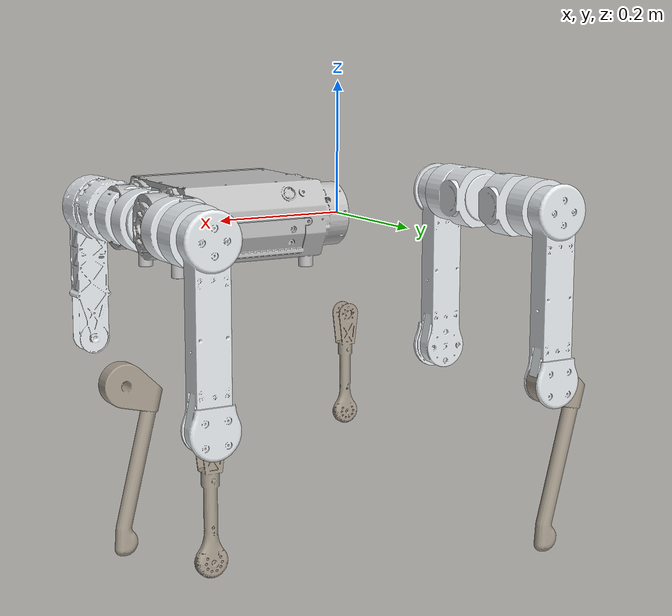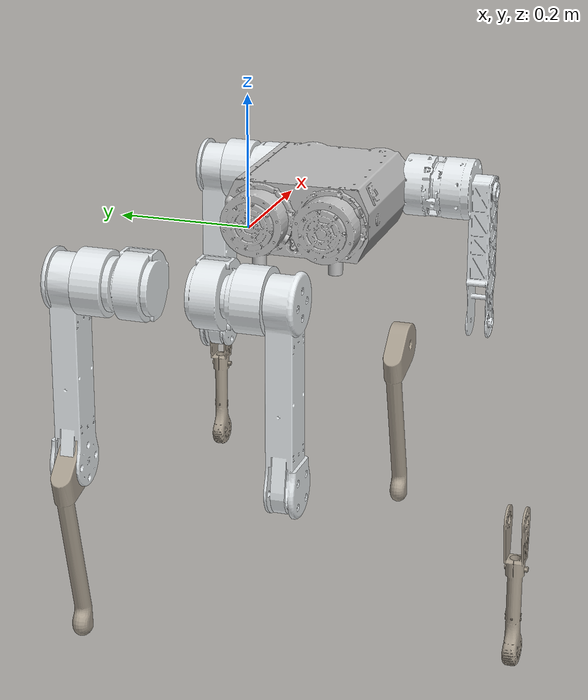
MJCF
<mujoco model="belt_urdf_aligned_axis_ok">
  <compiler angle="radian" meshdir="assets"/>
  <asset>
    <mesh name="base_link" file="base_link.STL"/>
    <mesh name="fr_abad_link" file="fr_abad_link.STL"/>
    <mesh name="fr_hip_link" file="fr_hip_link.STL"/>
    <mesh name="fr_knee_link" file="fr_knee_link.STL"/>
    <mesh name="fl_abad_link" file="fl_abad_link.STL"/>
    <mesh name="fl_hip_link" file="fl_hip_link.STL"/>
    <mesh name="fl_knee_link" file="fl_knee_link.STL"/>
    <mesh name="rr_abad_link" file="rr_abad_link.STL"/>
    <mesh name="rr_hip_link" file="rr_hip_link.STL"/>
    <mesh name="rr_knee_link" file="rr_knee_link.STL"/>
    <mesh name="rl_abad_link" file="rl_abad_link.STL"/>
    <mesh name="rl_hip_link" file="rl_hip_link.STL"/>
    <mesh name="rl_knee_link" file="rl_knee_link.STL"/>
  </asset>
  <worldbody>
    <geom type="mesh" rgba="0.752941 0.752941 0.752941 1" mesh="base_link"/>
    <body name="fr_abad_link" pos="0.241 -0.055 0">
      <inertial pos="0.052428 -0.025819 7.2618e-08" quat="0.453148 0.54283 -0.453135 0.542827" mass="1.9747" diaginertia="0.0032013 0.00310579 0.00221631"/>
      <joint name="fr_abad_joint" pos="0 0 0" axis="-1 0 0" limited="false"/>
      <geom type="mesh" rgba="0.89804 0.91765 0.92941 1" mesh="fr_abad_link"/>
      <body name="fr_hip_link" pos="0.0554994 -0.10045 0">
        <inertial pos="-4.7268e-06 -0.0035029 -0.11665" quat="0.707131 0.00128766 -0.0013139 0.70708" mass="1.0489" diaginertia="0.0125462 0.012351 0.000606138"/>
        <joint name="fr_hip_joint" pos="0 0 0" axis="0 1 0" limited="false"/>
        <geom type="mesh" rgba="0.89804 0.91765 0.92941 1" mesh="fr_hip_link"/>
        <body name="fr_knee_link" pos="0 0 -0.2695">
          <inertial pos="-0.0112576 -3.13499e-08 -0.0631957" quat="0.70698 -0.0132108 -0.0132119 0.706987" mass="0.391062" diaginertia="0.00383396 0.00366268 0.000225956"/>
          <joint name="fr_knee_joint" pos="0 0 0" axis="0 1 0" limited="false"/>
          <geom type="mesh" rgba="0.658824 0.619608 0.560784 1" mesh="fr_knee_link"/>
        </body>
      </body>
    </body>
    <body name="fl_abad_link" pos="0.241 0.055 0">
      <inertial pos="0.052428 0.025819 -7.2618e-08" quat="0.542827 0.453135 -0.54283 0.453148" mass="1.9747" diaginertia="0.0032013 0.00310579 0.00221631"/>
      <joint name="fl_abad_joint" pos="0 0 0" axis="-1 0 0" limited="false"/>
      <geom type="mesh" rgba="0.89804 0.91765 0.92941 1" mesh="fl_abad_link"/>
      <body name="fl_hip_link" pos="0.055499 0.10045 0">
        <inertial pos="4.7257e-06 0.0035029 -0.11665" quat="0.707131 -0.00128767 0.0013139 0.70708" mass="1.0489" diaginertia="0.0125462 0.012351 0.000606138"/>
        <joint name="fl_hip_joint" pos="0 0 0" axis="0 -1 0" limited="false"/>
        <geom type="mesh" rgba="0.89804 0.91765 0.92941 1" mesh="fl_hip_link"/>
        <body name="fl_knee_link" pos="0 0 -0.2695">
          <inertial pos="-0.011258 -3.135e-08 -0.063196" quat="0.70698 -0.0132108 -0.0132119 0.706987" mass="0.39106" diaginertia="0.003834 0.0036627 0.000225953"/>
          <joint name="fl_knee_joint" pos="0 0 0" axis="0 -1 0" limited="false"/>
          <geom type="mesh" rgba="0.65882 0.61961 0.56078 1" mesh="fl_knee_link"/>
        </body>
      </body>
    </body>
    <body name="rr_abad_link" pos="-0.241 -0.055 0">
      <inertial pos="-0.052428 -0.025819 -7.2618e-08" quat="0.54283 0.453148 -0.542827 0.453135" mass="1.9747" diaginertia="0.0032013 0.00310579 0.00221631"/>
      <joint name="rr_abad_joint" pos="0 0 0" axis="1 0 0" limited="false"/>
      <geom type="mesh" rgba="0.89804 0.91765 0.92941 1" mesh="rr_abad_link"/>
      <body name="rr_hip_link" pos="-0.055499 -0.10045 0">
        <inertial pos="-4.72682e-06 -0.0035029 -0.116651" quat="0.707131 0.00128766 -0.0013139 0.70708" mass="1.04889" diaginertia="0.0125463 0.0123505 0.000606143"/>
        <joint name="rr_hip_joint" pos="0 0 0" axis="0 1 0" limited="false"/>
        <geom type="mesh" rgba="0.898039 0.917647 0.929412 1" mesh="rr_hip_link"/>
        <body name="rr_knee_link" pos="0 0 -0.2695">
          <inertial pos="-0.011258 -3.135e-08 -0.063196" quat="0.70698 -0.0132108 -0.0132119 0.706987" mass="0.39106" diaginertia="0.003834 0.0036627 0.000225953"/>
          <joint name="rr_knee_joint" pos="0 0 0" axis="0 1 0" limited="false"/>
          <geom type="mesh" rgba="0.65882 0.61961 0.56078 1" mesh="rr_knee_link"/>
        </body>
      </body>
    </body>
    <body name="rl_abad_link" pos="-0.241 0.055 0">
      <inertial pos="-0.052428 0.025819 7.2618e-08" quat="0.453135 0.542827 -0.453148 0.54283" mass="1.9747" diaginertia="0.0032013 0.00310579 0.00221631"/>
      <joint name="rl_abad_joint" pos="0 0 0" axis="1 0 0" limited="false"/>
      <geom type="mesh" rgba="0.89804 0.91765 0.92941 1" mesh="rl_abad_link"/>
      <body name="rl_hip_link" pos="-0.055499 0.10045 0">
        <inertial pos="4.7257e-06 0.0035029 -0.11665" quat="0.707131 -0.00128767 0.0013139 0.70708" mass="1.0489" diaginertia="0.0125462 0.012351 0.000606138"/>
        <joint name="rl_hip_joint" pos="0 0 0" axis="0 -1 0" limited="false"/>
        <geom type="mesh" rgba="0.89804 0.91765 0.92941 1" mesh="rl_hip_link"/>
        <body name="rl_knee_link" pos="0 0 -0.2695">
          <inertial pos="-0.011258 -3.135e-08 -0.063196" quat="0.70698 -0.0132108 -0.0132119 0.706987" mass="0.39106" diaginertia="0.003834 0.0036627 0.000225953"/>
          <joint name="rl_knee_joint" pos="0 0 0" axis="0 -1 0" limited="false"/>
          <geom type="mesh" rgba="0.65882 0.61961 0.56078 1" mesh="rl_knee_link"/>
        </body>
      </body>
    </body>
  </worldbody>
</mujoco>
